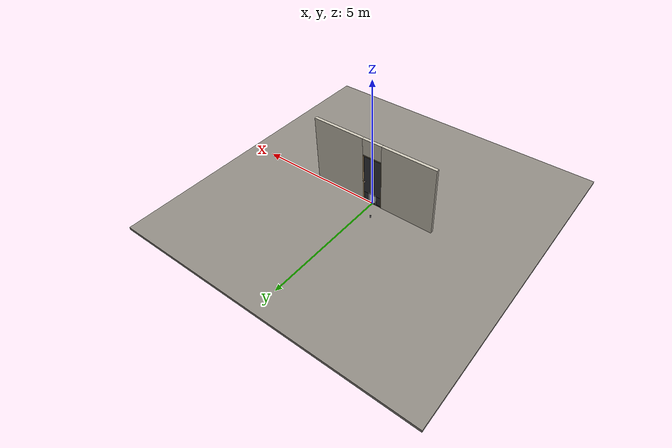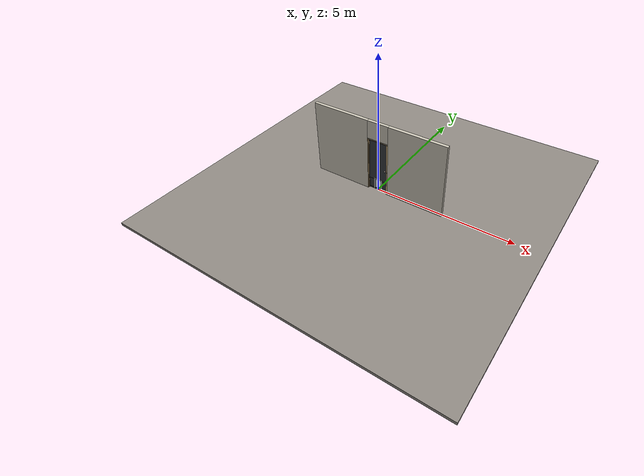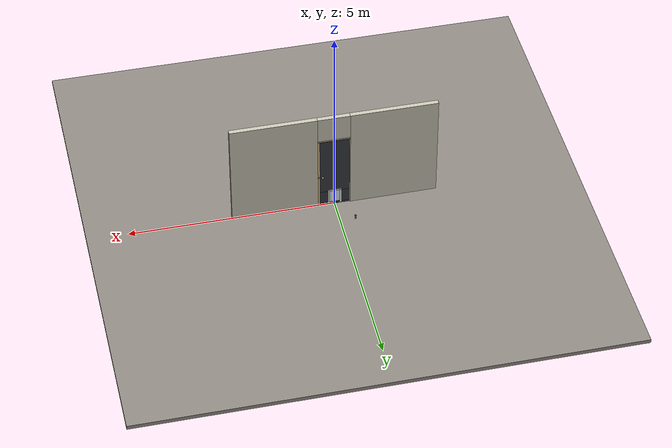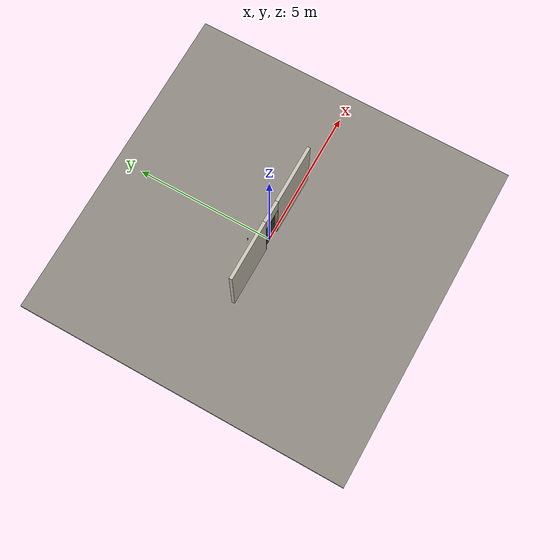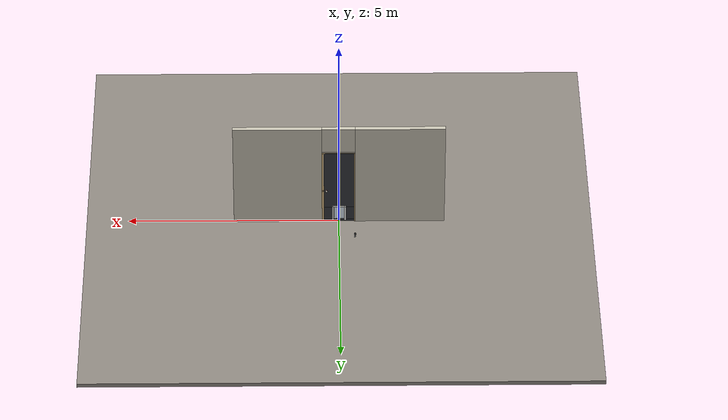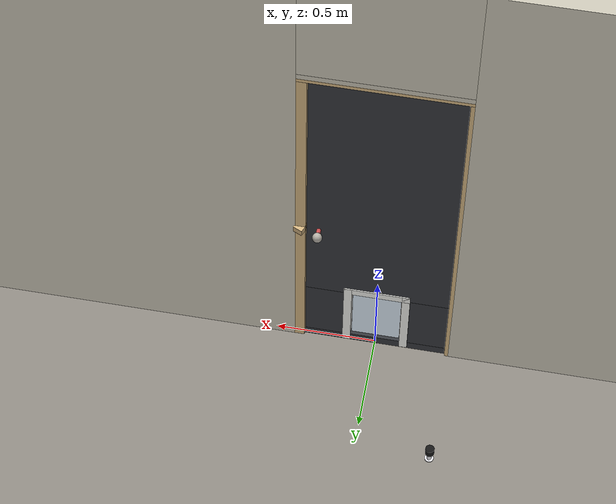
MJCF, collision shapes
<?xml version="1.0" ?>
<mujoco model="db0111_swing_single_simple">
  <compiler angle="radian" meshdir="../../hardware" texturedir="../../textures" autolimits="true" inertiafromgeom="false"/>
  <option timestep="0.002" integrator="implicitfast" cone="elliptic" impratio="10" noslip_iterations="3">
    <flag multiccd="enable"/>
  </option>
  <size memory="16M"/>
  <default>
    <geom condim="4" solref="0.005 1" solimp="0.95 0.99 0.001"/>
    <joint solreflimit="0.005 1" solimplimit="0.95 0.99 0.001"/>
    <tendon solreflimit="0.005 1"/>
    <equality solref="0.002 1"/>
  </default>
  <visual>
    <headlight ambient="0.4 0.4 0.4" diffuse="0.7 0.7 0.7" specular="0.2 0.2 0.2"/>
    <quality shadowsize="4096"/>
    <map znear="0.01" zfar="60"/>
  </visual>
  <asset>
    <mesh name="hinge_e3fd49fe13" file="hinge_e3fd49fe13.obj"/>
    <mesh name="hinge_jamb_e47eb19c39" file="hinge_jamb_e47eb19c39.obj"/>
    <mesh name="knob_248d825e64" file="knob_248d825e64.obj"/>
    <mesh name="knob_d1888f6f03" file="knob_d1888f6f03.obj"/>
    <material name="mat_floor" rgba="0.55 0.53 0.5 1" specular="0.2" shininess="0.15" reflectance="0"/>
    <material name="mat_wall" rgba="0.78 0.76 0.7 1" specular="0.2" shininess="0.1" reflectance="0"/>
    <material name="mat_leaf" rgba="0.2 0.21 0.23 1" specular="0.2" shininess="0.48" reflectance="0"/>
    <material name="mat_leaf_louver" rgba="0.17 0.178 0.196 1" specular="0.2" shininess="0.4" reflectance="0"/>
    <material name="mat_hinge" rgba="0.65 0.66 0.68 1" specular="0.74" shininess="0.5" reflectance="0.36"/>
    <material name="mat_op_nickel_satin" rgba="0.72 0.7 0.66 1" specular="0.8" shininess="0.65" reflectance="0.4"/>
    <material name="mat_trim" rgba="0.85 0.66 0.3 1" specular="0.8" shininess="0.75" reflectance="0.4"/>
    <material name="mat_bolt" rgba="0.85 0.66 0.3 1" specular="0.8" shininess="0.75" reflectance="0.4"/>
    <material name="mat_frame" rgba="0.82 0.7 0.5 1" specular="0.2" shininess="0.45" reflectance="0"/>
    <material name="mat_seal" rgba="0.1 0.1 0.1 1" specular="0.2" shininess="0.1" reflectance="0"/>
    <material name="mat_hook" rgba="0.9 0.9 0.92 1" specular="0.8" shininess="0.9" reflectance="0.4"/>
    <material name="mat_petframe" rgba="0.92 0.92 0.9 1" specular="0.2" shininess="0.6" reflectance="0"/>
    <material name="mat_petflap" rgba="0.85 0.9 0.95 0.45" specular="0.2" shininess="0.7" reflectance="0.1"/>
    <material name="mat_bumper_stop" rgba="0.08 0.08 0.08 1" specular="0.2" shininess="0.1" reflectance="0"/>
    <material name="mat_stop_base" rgba="0.9 0.9 0.92 1" specular="0.8" shininess="0.9" reflectance="0.4"/>
    <texture name="skybox" type="skybox" builtin="gradient" rgb1="0.6 0.7 0.85" rgb2="0.9 0.92 0.95" width="256" height="256"/>
  </asset>
  <worldbody>
    <light name="sun" pos="1.5 -2.5 4" dir="-0.3 0.5 -0.8" directional="true" diffuse="0.8 0.8 0.8" specular="0.3 0.3 0.3" castshadow="true"/>
    <light name="fill" pos="-1.5 2.5 3" dir="0.3 -0.5 -0.7" directional="true" diffuse="0.35 0.35 0.4" castshadow="false"/>
    <camera name="robot_view" pos="0 -2.531125 1.698475" xyaxes="1 0 0 0 0.26963 0.962964" fovy="52"/>
    <camera name="far_view" pos="0 2.465125 1.698475" xyaxes="-1 0 0 0 -0.26963 0.962964" fovy="52"/>
    <camera name="iso" pos="1.898575 -2.131425 2.098175" xyaxes="0.741536 0.670913 0 -0.242917 0.268487 0.932151" fovy="46"/>
    <camera name="detail_handle" pos="0.475 -0.864 1.194" xyaxes="0.97561 0.219512 0 -0.070934 0.315262 0.94635" fovy="38"/>
    <geom name="floor" type="box" size="6 6 0.05" pos="0 0 -0.05" material="mat_floor" group="0" contype="1" conaffinity="1" friction="0.8 0.005 0.0001" density="2400"/>
    <geom name="wall_left" type="box" size="1.061 0.0575 1.35" pos="-1.439 -0.033 1.35" material="mat_wall" group="0" contype="1" conaffinity="1" friction="0.6 0.005 0.0001" density="800"/>
    <geom name="wall_right" type="box" size="1.046 0.0575 1.35" pos="1.454 -0.033 1.35" material="mat_wall" group="0" contype="1" conaffinity="1" friction="0.6 0.005 0.0001" density="800"/>
    <geom name="wall_header" type="box" size="0.393 0.0575 0.3265" pos="0.015 -0.033 2.3735" material="mat_wall" group="0" contype="1" conaffinity="1" friction="0.6 0.005 0.0001" density="800"/>
    <geom name="hinge_0_jamb" type="mesh" mesh="hinge_jamb_e47eb19c39" pos="-0.356 0.0245 0.259" quat="0 1 0 0" material="mat_hinge" group="1" contype="0" conaffinity="0" density="7850"/>
    <geom name="hinge_1_jamb" type="mesh" mesh="hinge_jamb_e47eb19c39" pos="-0.356 0.0245 1.814" quat="0 1 0 0" material="mat_hinge" group="1" contype="0" conaffinity="0" density="7850"/>
    <geom name="jamb_hinge" type="box" size="0.0095 0.0575 0.999" pos="-0.3685 -0.033 0.999" material="mat_frame" group="0" contype="1" conaffinity="1" friction="0.6 0.005 0.0001" density="400"/>
    <geom name="strike_914_wall_n" type="box" size="0.0245 0.041325 0.0167" pos="0.3835 -0.049175 0.914" material="mat_frame" group="0" contype="1" conaffinity="1" friction="0.6 0.005 0.0001" density="400"/>
    <geom name="strike_914_wall_p" type="box" size="0.0245 0.008 0.0167" pos="0.3835 0.01585 0.914" material="mat_frame" group="0" contype="1" conaffinity="1" friction="0.6 0.005 0.0001" density="400"/>
    <geom name="strike_914_ramp" type="box" size="0.0245 0.01649 0.0167" pos="0.388136 0.028673 0.914" quat="0.977148 0 0 -0.212558" material="mat_frame" group="0" contype="1" conaffinity="1" friction="0.12 0.005 0.0001" density="400"/>
    <geom name="strike_914_back" type="box" size="0.01615 0.00785 0.0167" pos="0.39185 0 0.914" material="mat_frame" group="0" contype="1" conaffinity="1" friction="0.6 0.005 0.0001" density="400"/>
    <geom name="jamb_strike_0" type="box" size="0.0245 0.0575 0.44865" pos="0.3835 -0.033 0.44865" material="mat_frame" group="0" contype="1" conaffinity="1" friction="0.6 0.005 0.0001" density="400"/>
    <geom name="jamb_strike_1" type="box" size="0.0245 0.0575 0.53365" pos="0.3835 -0.033 1.46435" material="mat_frame" group="0" contype="1" conaffinity="1" friction="0.6 0.005 0.0001" density="400"/>
    <geom name="jamb_head" type="box" size="0.393 0.0575 0.0095" pos="0.015 -0.033 2.0075" material="mat_frame" group="0" contype="1" conaffinity="1" friction="0.6 0.005 0.0001" density="400"/>
    <geom name="head_stud" type="box" size="0.393 0.0575 0.015" pos="0.015 -0.033 2.032" material="mat_wall" group="0" contype="1" conaffinity="1" friction="0.6 0.005 0.0001" density="500"/>
    <geom name="stop_hinge" type="box" size="0.0055 0.016 0.999" pos="-0.3535 -0.034 0.999" material="mat_frame" group="0" contype="1" conaffinity="1" friction="0.6 0.005 0.0001" density="400"/>
    <geom name="stop_strike" type="box" size="0.0055 0.016 0.999" pos="0.3535 -0.034 0.999" material="mat_frame" group="0" contype="1" conaffinity="1" friction="0.6 0.005 0.0001" density="400"/>
    <geom name="stop_head" type="box" size="0.359 0.016 0.0055" pos="0 -0.034 1.9925" material="mat_frame" group="0" contype="1" conaffinity="1" friction="0.6 0.005 0.0001" density="400"/>
    <geom name="seal_hinge" type="box" size="0.004 0.002 0.999" pos="-0.356 -0.0195 0.999" material="mat_seal" group="1" contype="0" conaffinity="0" density="1100"/>
    <geom name="seal_strike" type="box" size="0.004 0.002 0.999" pos="0.356 -0.0195 0.999" material="mat_seal" group="1" contype="0" conaffinity="0" density="1100"/>
    <geom name="seal_head" type="box" size="0.339 0.002 0.008" pos="0 -0.0195 1.986" material="mat_seal" group="1" contype="0" conaffinity="0" density="1100"/>
    <geom name="door_stop_base" type="cylinder" size="0.022 0.003" pos="-0.372 0.62885 0.003" material="mat_stop_base" group="0" contype="1" conaffinity="1" friction="0.6 0.005 0.0001" density="7850"/>
    <geom name="door_stop_post" type="cylinder" size="0.012 0.0245" pos="-0.372 0.62885 0.0305" material="mat_stop_base" group="0" contype="1" conaffinity="1" friction="0.6 0.005 0.0001" density="7850"/>
    <geom name="door_stop_bumper" type="cylinder" size="0.022 0.02" pos="-0.372 0.62885 0.075" material="mat_bumper_stop" group="0" contype="1" conaffinity="1" friction="0.6 0.005 0.0001" density="1100"/>
    <site name="approach_point" pos="0 -1.5 0" quat="1 0 0 0" size="0.05" rgba="0.2 0.9 0.2 0.5" group="4"/>
    <site name="goal_point" pos="0 1.5 0" quat="1 0 0 0" size="0.05" rgba="0.2 0.9 0.2 0.5" group="4"/>
    <site name="door_plane_center" pos="0 0 0.999" quat="1 0 0 0" size="0.02" rgba="0.2 0.9 0.2 0.5" group="4"/>
    <body name="leaf" pos="-0.359 0 0">
      <inertial pos="0.347194 0.000544 0.897874" mass="13.129868" quat="-0.497525 0.499871 0.500226 0.502366" diaginertia="0.550829648 4.622265735 5.169725746"/>
      <joint name="leaf_hinge" type="hinge" axis="0 0 1" pos="0.003 0.0245 0" limited="true" range="0 1.570796" solreflimit="0.02 1" damping="2.091613" frictionloss="3.711586" stiffness="4.4" springref="-1.096605" armature="0.02"/>
      <geom name="leaf_slab_below" type="box" size="0.3555 0.0175 0.0245" pos="0.3585 0 0.0335" material="mat_leaf" group="0" contype="1" conaffinity="1" friction="0.35 0.005 0.0001" density="1"/>
      <geom name="leaf_slab_above" type="box" size="0.3555 0.0175 0.787" pos="0.3585 0 1.207" material="mat_leaf" group="0" contype="1" conaffinity="1" friction="0.35 0.005 0.0001" density="1"/>
      <geom name="leaf_slab_left" type="box" size="0.11475 0.0175 0.181" pos="0.11775 0 0.239" material="mat_leaf" group="0" contype="1" conaffinity="1" friction="0.35 0.005 0.0001" density="1"/>
      <geom name="leaf_slab_right" type="box" size="0.11475 0.0175 0.181" pos="0.59925 0 0.239" material="mat_leaf" group="0" contype="1" conaffinity="1" friction="0.35 0.005 0.0001" density="1"/>
      <geom name="hinge_0" type="mesh" mesh="hinge_e3fd49fe13" pos="0.003 0.0245 0.259" quat="0 1 0 0" material="mat_hinge" group="1" contype="0" conaffinity="0" density="7850"/>
      <geom name="hinge_1" type="mesh" mesh="hinge_e3fd49fe13" pos="0.003 0.0245 1.814" quat="0 1 0 0" material="mat_hinge" group="1" contype="0" conaffinity="0" density="7850"/>
      <geom name="leaf_latch_bolt_faceplate" type="box" size="0.0006 0.01235 0.0267" pos="0.7134 0 0.914" material="mat_bolt" group="1" contype="0" conaffinity="0" density="8500"/>
      <geom name="pet_frame_top" type="box" size="0.165 0.0235 0.02" pos="0.3585 0 0.439" material="mat_petframe" group="2" contype="0" conaffinity="0" density="1200"/>
      <geom name="pet_frame_l" type="box" size="0.02 0.0235 0.22" pos="0.2135 0 0.239" material="mat_petframe" group="2" contype="0" conaffinity="0" density="1200"/>
      <geom name="pet_frame_r" type="box" size="0.02 0.0235 0.22" pos="0.5035 0 0.239" material="mat_petframe" group="2" contype="0" conaffinity="0" density="1200"/>
      <site name="leaf_edge_mid" pos="0.714 0 0.9925" quat="1 0 0 0" size="0.02" rgba="0.2 0.9 0.2 0.5" group="4"/>
      <body name="leaf_handle" pos="0.654 0 0.914">
        <inertial pos="0 -0.000225 0" mass="1.101383" quat="0.5 0.5 0.5 0.5" diaginertia="0.000311587 0.003718718 0.003718718"/>
        <joint name="leaf_handle_hinge" type="hinge" axis="0 -1 0" limited="true" range="0 0.87" damping="0.143613" frictionloss="0.038" stiffness="0.5" springref="-0.5" armature="0.01"/>
        <geom name="leaf_handle_knob_n" type="mesh" mesh="knob_248d825e64" pos="0 -0.0175 0" quat="0.707107 0.707107 0 0" material="mat_op_nickel_satin" group="1" contype="0" conaffinity="0" density="3000"/>
        <geom name="leaf_handle_knob_col_n" type="sphere" size="0.0243" pos="0 -0.064 0" material="mat_op_nickel_satin" group="0" contype="1" conaffinity="1" friction="0.9 0.01 0.0001" density="3000"/>
        <geom name="leaf_handle_knob_neck_n" type="cylinder" size="0.011 0.012" pos="0 -0.0295 0" quat="0.707107 -0.707107 0 0" material="mat_op_nickel_satin" group="3" contype="1" conaffinity="1" rgba="0.8 0.3 0.3 0.25" friction="0.6 0.005 0.0001" density="3000"/>
        <geom name="leaf_handle_knob_p" type="mesh" mesh="knob_d1888f6f03" pos="0 0.0175 0" quat="-0.707107 0.707107 0 0" material="mat_op_nickel_satin" group="1" contype="0" conaffinity="0" density="3000"/>
        <geom name="leaf_handle_knob_col_p" type="sphere" size="0.0243" pos="0 0.064 0" material="mat_op_nickel_satin" group="0" contype="1" conaffinity="1" friction="0.9 0.01 0.0001" density="3000"/>
        <geom name="leaf_handle_knob_neck_p" type="cylinder" size="0.011 0.012" pos="0 0.0295 0" quat="0.707107 -0.707107 0 0" material="mat_op_nickel_satin" group="3" contype="1" conaffinity="1" rgba="0.8 0.3 0.3 0.25" friction="0.6 0.005 0.0001" density="3000"/>
        <site name="leaf_handle_grip_n" pos="0 -0.064 0" quat="1 0 0 0" size="0.012" rgba="0.2 0.9 0.2 0.5" group="4"/>
        <site name="leaf_handle_grip_p" pos="0 0.064 0" quat="1 0 0 0" size="0.012" rgba="0.2 0.9 0.2 0.5" group="4"/>
      </body>
      <body name="leaf_latch_bolt" pos="0.714 0 0.914">
        <inertial pos="-0.00865 0 0" mass="0.041419" quat="0.92388 -0.382683 0 0" diaginertia="0.000000798 0.000005598 0.000005598"/>
        <joint name="leaf_latch_bolt_slide" type="slide" axis="-1 0 0" limited="true" range="0 0.0127" damping="2" frictionloss="0.3" stiffness="300" springref="-0.008333" armature="0.1"/>
        <geom name="leaf_latch_bolt_capsule" type="capsule" size="0.00635 0.015" pos="-0.00865 0 0" quat="0.707107 0 0.707107 0" material="mat_bolt" group="0" contype="1" conaffinity="1" friction="0.2 0.005 0.0001" density="8500"/>
      </body>
      <body name="pet_flap" pos="0.3585 0 0.419">
        <inertial pos="0 0 -0.18" mass="0.086345" quat="-0.5 0.5 0.5 0.5" diaginertia="0.000421506 0.000891653 0.001312929"/>
        <joint name="pet_flap_hinge" type="hinge" axis="1 0 0" limited="true" range="-1.45 1.45" damping="0.02" frictionloss="0.02" armature="0.005"/>
        <geom name="pet_flap_geom" type="box" size="0.121 0.002 0.176" pos="0 0 -0.18" material="mat_petflap" group="0" contype="1" conaffinity="1" friction="0.6 0.005 0.0001" density="1250"/>
      </body>
    </body>
  </worldbody>
  <tendon>
    <fixed name="leaf_latch_bolt_coupling" limited="true" range="0 10">
      <joint joint="leaf_latch_bolt_slide" coef="1"/>
      <joint joint="leaf_handle_hinge" coef="-0.015679"/>
    </fixed>
  </tendon>
  <sensor>
    <jointpos name="leaf_hinge_pos" joint="leaf_hinge"/>
    <jointvel name="leaf_hinge_vel" joint="leaf_hinge"/>
    <jointpos name="leaf_handle_hinge_pos" joint="leaf_handle_hinge"/>
    <jointvel name="leaf_handle_hinge_vel" joint="leaf_handle_hinge"/>
    <jointpos name="leaf_latch_bolt_slide_pos" joint="leaf_latch_bolt_slide"/>
    <jointvel name="leaf_latch_bolt_slide_vel" joint="leaf_latch_bolt_slide"/>
    <jointpos name="pet_flap_hinge_pos" joint="pet_flap_hinge"/>
    <jointvel name="pet_flap_hinge_vel" joint="pet_flap_hinge"/>
  </sensor>
</mujoco>
